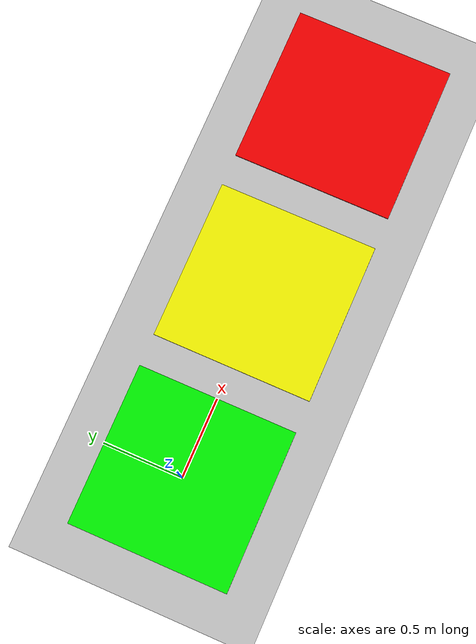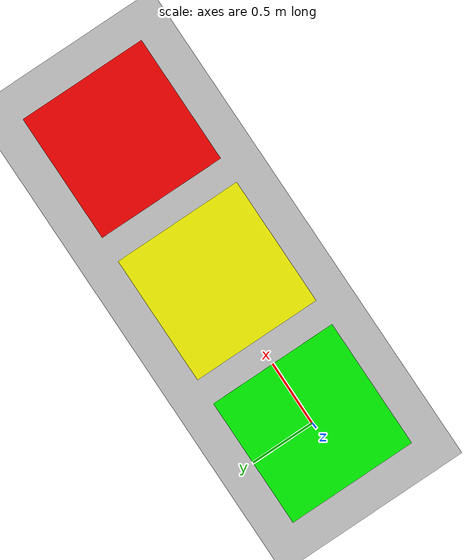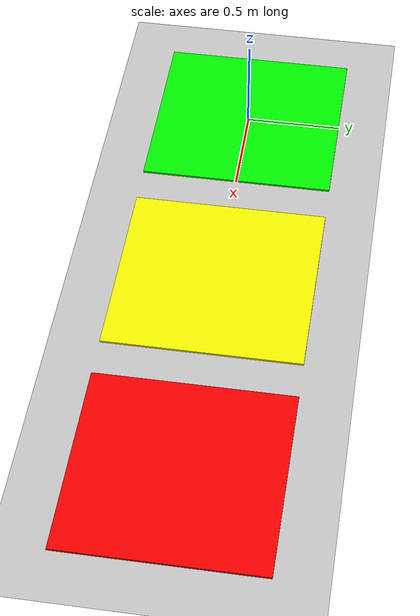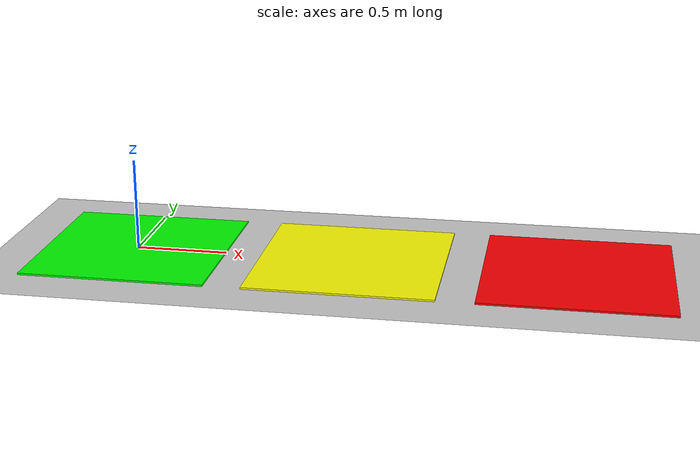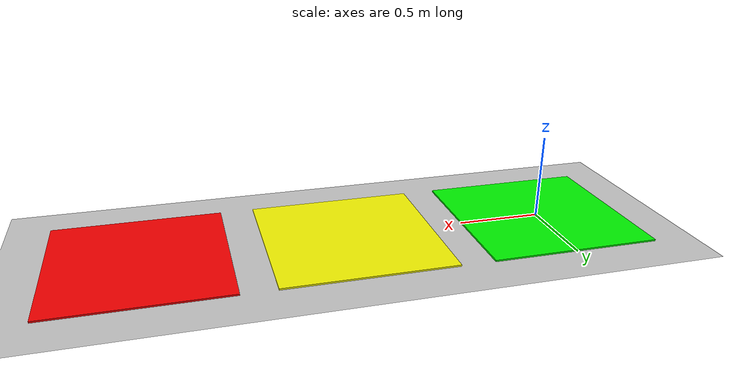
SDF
<sdf version="1.6">
  <world name="color_floor_world">
    <include>
      <uri>model://sun</uri>
    </include>
    <include>
      <uri>model://ground_plane</uri>
    </include>

    <!-- GREEN patch -->
    <model name="green_patch">
      <pose>0 0 0.005 0 0 0</pose>
      <link name="link">
        <visual name="visual">
          <geometry>
            <box><size>1 1 0.01</size></box>
          </geometry>
          <material>
            <ambient>0 1 0 1</ambient>
            <diffuse>0 1 0 1</diffuse>
          </material>
        </visual>
      </link>
    </model>

    <!-- YELLOW patch -->
    <model name="yellow_patch">
      <pose>1.2 0 0.005 0 0 0</pose>
      <link name="link">
        <visual name="visual">
          <geometry>
            <box><size>1 1 0.01</size></box>
          </geometry>
          <material>
            <ambient>1 1 0 1</ambient>
            <diffuse>1 1 0 1</diffuse>
          </material>
        </visual>
      </link>
    </model>

    <!-- RED patch -->
    <model name="red_patch">
      <pose>2.4 0 0.005 0 0 0</pose>
      <link name="link">
        <visual name="visual">
          <geometry>
            <box><size>1 1 0.01</size></box>
          </geometry>
          <material>
            <ambient>1 0 0 1</ambient>
            <diffuse>1 0 0 1</diffuse>
          </material>
        </visual>
      </link>
    </model>

  </world>
</sdf>
